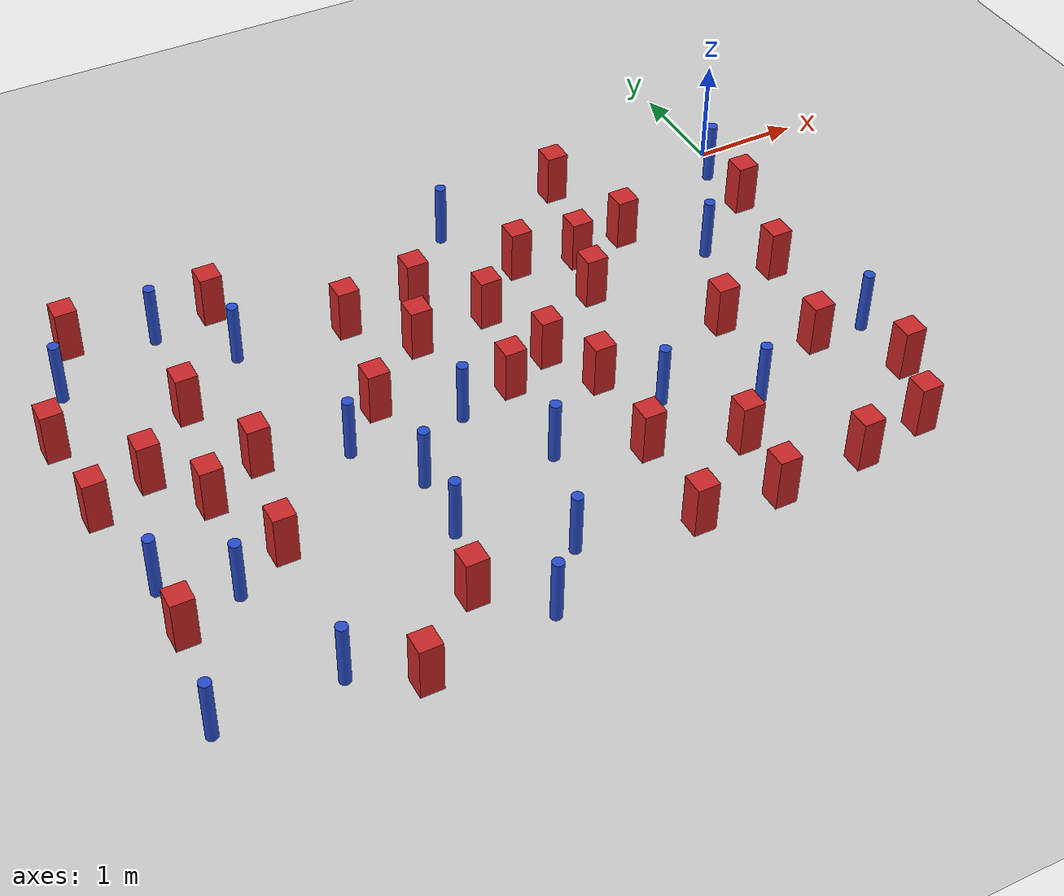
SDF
<sdf version="1.6">
 <world name="default">
  <model name="ground_plane">
   <static>1</static>
   <link name="link">
    <collision name="collision">
     <geometry><plane><normal>0 0 1</normal><size>100 100</size></plane></geometry>
     <surface><friction><ode><mu>100</mu><mu2>50</mu2></ode></friction></surface>
    </collision>
    <visual name="visual">
     <cast_shadows>0</cast_shadows>
     <geometry><plane><normal>0 0 1</normal><size>100 100</size></plane></geometry>
     <material>
      <ambient>1.0 1.0 1.0 1.0</ambient>
      <diffuse>0.8 0.8 0.8 1.0</diffuse>
      <specular>0.01 0.01 0.01 1.000000</specular>
     </material>
    </visual>
   </link>
  </model>
  <model name="pole_obstacle4">
   <static>true</static>
   <pose>-4.39595485227 -2.83956614343 2.88873142074e-08 -9.90536690245e-09 4.6021994898e-07 -1.20965994966e-07</pose>
   <link name="link">
    <pose>0 0 0.3 0 -0 0</pose>
    <inertial>
     <mass>1</mass>
     <inertia><ixx>0.145833</ixx><ixy>0</ixy><ixz>0</ixz><iyy>0.145833</iyy><iyz>0</iyz><izz>0.125</izz></inertia>
    </inertial>
    <collision name="collision">
     <geometry><cylinder><radius>0.05</radius><length>.6</length></cylinder></geometry>
    </collision>
    <visual name="visual">
     <geometry><cylinder><radius>0.05</radius><length>.6</length></cylinder></geometry>
     <material>
      <script><name>Gazebo/Blue</name><uri>file://media/materials/scripts/gazebo.material</uri></script>
     </material>
    </visual>
   </link>
  </model>
  <model name="square_post_obstacle6">
   <static>true</static>
   <pose>-3.73251036276 -1.32779266943 8.22691968438e-08 7.2212513382e-06 -7.54495500217e-07 2.29674213826e-05</pose>
   <link name="link">
    <pose>0 0 0.25 0 -0 0</pose>
    <inertial>
     <mass>100</mass>
     <inertia>
      <ixx>0.166667</ixx>
      <ixy>0</ixy>
      <ixz>0</ixz>
      <iyy>0.166667</iyy>
      <iyz>0</iyz>
      <izz>0.166667</izz>
     </inertia>
    </inertial>
    <collision name="collision"><geometry><box><size>.2 .2 .5</size></box></geometry></collision>
    <visual name="visual">
     <geometry><box><size>.2 .2 .5</size></box></geometry>
     <material>
      <script><name>Gazebo/Red</name><uri>file://media/materials/scripts/gazebo.material</uri></script>
     </material>
    </visual>
   </link>
  </model>
  <model name="pole_obstacle13">
   <static>true</static>
   <pose>-1.42932631599 -3.22152350444 2.88873142074e-08 -9.90536689791e-09 4.6021994899e-07 -1.20965994959e-07</pose>
   <link name="link">
    <pose>0 0 0.3 0 -0 0</pose>
    <inertial>
     <mass>1</mass>
     <inertia><ixx>0.145833</ixx><ixy>0</ixy><ixz>0</ixz><iyy>0.145833</iyy><iyz>0</iyz><izz>0.125</izz></inertia>
    </inertial>
    <collision name="collision">
     <geometry><cylinder><radius>0.05</radius><length>.6</length></cylinder></geometry>
    </collision>
    <visual name="visual">
     <geometry><cylinder><radius>0.05</radius><length>.6</length></cylinder></geometry>
     <material>
      <script><name>Gazebo/Blue</name><uri>file://media/materials/scripts/gazebo.material</uri></script>
     </material>
    </visual>
   </link>
  </model>
  <model name="square_post_obstacle12">
   <static>true</static>
   <pose>-1.90750702567 -0.886768801386 8.22691968438e-08 7.2212513382e-06 -7.54495500217e-07 2.29674213826e-05</pose>
   <link name="link">
    <pose>0 0 0.25 0 -0 0</pose>
    <inertial>
     <mass>100</mass>
     <inertia>
      <ixx>0.166667</ixx>
      <ixy>0</ixy>
      <ixz>0</ixz>
      <iyy>0.166667</iyy>
      <iyz>0</iyz>
      <izz>0.166667</izz>
     </inertia>
    </inertial>
    <collision name="collision"><geometry><box><size>.2 .2 .5</size></box></geometry></collision>
    <visual name="visual">
     <geometry><box><size>.2 .2 .5</size></box></geometry>
     <material>
      <script><name>Gazebo/Red</name><uri>file://media/materials/scripts/gazebo.material</uri></script>
     </material>
    </visual>
   </link>
  </model>
  <model name="square_post_obstacle24">
   <static>true</static>
   <pose>-1.93333260109 -4.26986810397 8.22691968438e-08 7.22125133819e-06 -7.54495500217e-07 2.29674213826e-05</pose>
   <link name="link">
    <pose>0 0 0.25 0 -0 0</pose>
    <inertial>
     <mass>100</mass>
     <inertia>
      <ixx>0.166667</ixx>
      <ixy>0</ixy>
      <ixz>0</ixz>
      <iyy>0.166667</iyy>
      <iyz>0</iyz>
      <izz>0.166667</izz>
     </inertia>
    </inertial>
    <collision name="collision"><geometry><box><size>.2 .2 .5</size></box></geometry></collision>
    <visual name="visual">
     <geometry><box><size>.2 .2 .5</size></box></geometry>
     <material>
      <script><name>Gazebo/Red</name><uri>file://media/materials/scripts/gazebo.material</uri></script>
     </material>
    </visual>
   </link>
  </model>
  <model name="pole_obstacle34">
   <static>true</static>
   <pose>-3.32096200655 -3.04326368019 2.88873142074e-08 -9.90536689597e-09 4.60219948995e-07 -1.20965994957e-07</pose>
   <link name="link">
    <pose>0 0 0.3 0 -0 0</pose>
    <inertial>
     <mass>1</mass>
     <inertia><ixx>0.145833</ixx><ixy>0</ixy><ixz>0</ixz><iyy>0.145833</iyy><iyz>0</iyz><izz>0.125</izz></inertia>
    </inertial>
    <collision name="collision">
     <geometry><cylinder><radius>0.05</radius><length>.6</length></cylinder></geometry>
    </collision>
    <visual name="visual">
     <geometry><cylinder><radius>0.05</radius><length>.6</length></cylinder></geometry>
     <material>
      <script><name>Gazebo/Blue</name><uri>file://media/materials/scripts/gazebo.material</uri></script>
     </material>
    </visual>
   </link>
  </model>
  <model name="pole_obstacle35">
   <static>true</static>
   <pose>-3.66695691176 -4.0226889884 2.88873142074e-08 -9.90536690007e-09 4.60219948985e-07 -1.20965994963e-07</pose>
   <link name="link">
    <pose>0 0 0.3 0 -0 0</pose>
    <inertial>
     <mass>1</mass>
     <inertia><ixx>0.145833</ixx><ixy>0</ixy><ixz>0</ixz><iyy>0.145833</iyy><iyz>0</iyz><izz>0.125</izz></inertia>
    </inertial>
    <collision name="collision">
     <geometry><cylinder><radius>0.05</radius><length>.6</length></cylinder></geometry>
    </collision>
    <visual name="visual">
     <geometry><cylinder><radius>0.05</radius><length>.6</length></cylinder></geometry>
     <material>
      <script><name>Gazebo/Blue</name><uri>file://media/materials/scripts/gazebo.material</uri></script>
     </material>
    </visual>
   </link>
  </model>
  <model name="pole_obstacle39">
   <static>true</static>
   <pose>-4.78832714391 -2.25343991581 2.88873142074e-08 -9.90536690245e-09 4.6021994898e-07 -1.20965994966e-07</pose>
   <link name="link">
    <pose>0 0 0.3 0 -0 0</pose>
    <inertial>
     <mass>1</mass>
     <inertia><ixx>0.145833</ixx><ixy>0</ixy><ixz>0</ixz><iyy>0.145833</iyy><iyz>0</iyz><izz>0.125</izz></inertia>
    </inertial>
    <collision name="collision">
     <geometry><cylinder><radius>0.05</radius><length>.6</length></cylinder></geometry>
    </collision>
    <visual name="visual">
     <geometry><cylinder><radius>0.05</radius><length>.6</length></cylinder></geometry>
     <material>
      <script><name>Gazebo/Blue</name><uri>file://media/materials/scripts/gazebo.material</uri></script>
     </material>
    </visual>
   </link>
  </model>
  <model name="pole_obstacle41">
   <static>true</static>
   <pose>-5.72235798381 -0.187766226478 2.88873142074e-08 -9.90536689378e-09 4.60219949e-07 -1.20965994955e-07</pose>
   <link name="link">
    <pose>0 0 0.3 0 -0 0</pose>
    <inertial>
     <mass>1</mass>
     <inertia><ixx>0.145833</ixx><ixy>0</ixy><ixz>0</ixz><iyy>0.145833</iyy><iyz>0</iyz><izz>0.125</izz></inertia>
    </inertial>
    <collision name="collision">
     <geometry><cylinder><radius>0.05</radius><length>.6</length></cylinder></geometry>
    </collision>
    <visual name="visual">
     <geometry><cylinder><radius>0.05</radius><length>.6</length></cylinder></geometry>
     <material>
      <script><name>Gazebo/Blue</name><uri>file://media/materials/scripts/gazebo.material</uri></script>
     </material>
    </visual>
   </link>
  </model>
  <model name="pole_obstacle52">
   <static>true</static>
   <pose>-2.19203236939 -2.86878616461 2.88873142074e-08 -9.90536690232e-09 4.6021994898e-07 -1.20965994968e-07</pose>
   <link name="link">
    <pose>0 0 0.3 0 -0 0</pose>
    <inertial>
     <mass>1</mass>
     <inertia><ixx>0.145833</ixx><ixy>0</ixy><ixz>0</ixz><iyy>0.145833</iyy><iyz>0</iyz><izz>0.125</izz></inertia>
    </inertial>
    <collision name="collision">
     <geometry><cylinder><radius>0.05</radius><length>.6</length></cylinder></geometry>
    </collision>
    <visual name="visual">
     <geometry><cylinder><radius>0.05</radius><length>.6</length></cylinder></geometry>
     <material>
      <script><name>Gazebo/Blue</name><uri>file://media/materials/scripts/gazebo.material</uri></script>
     </material>
    </visual>
   </link>
  </model>
  <model name="square_post_obstacle43">
   <static>true</static>
   <pose>-0.394479689452 -1.82041644097 8.22691968438e-08 7.2212513382e-06 -7.54495500217e-07 2.29674213826e-05</pose>
   <link name="link">
    <pose>0 0 0.25 0 -0 0</pose>
    <inertial>
     <mass>100</mass>
     <inertia>
      <ixx>0.166667</ixx>
      <ixy>0</ixy>
      <ixz>0</ixz>
      <iyy>0.166667</iyy>
      <iyz>0</iyz>
      <izz>0.166667</izz>
     </inertia>
    </inertial>
    <collision name="collision"><geometry><box><size>.2 .2 .5</size></box></geometry></collision>
    <visual name="visual">
     <geometry><box><size>.2 .2 .5</size></box></geometry>
     <material>
      <script><name>Gazebo/Red</name><uri>file://media/materials/scripts/gazebo.material</uri></script>
     </material>
    </visual>
   </link>
  </model>
  <model name="square_post_obstacle45">
   <static>true</static>
   <pose>-6.43561946679 0.0325655676555 8.22691968438e-08 7.22125133819e-06 -7.54495500217e-07 2.29674213826e-05</pose>
   <link name="link">
    <pose>0 0 0.25 0 -0 0</pose>
    <inertial>
     <mass>100</mass>
     <inertia>
      <ixx>0.166667</ixx>
      <ixy>0</ixy>
      <ixz>0</ixz>
      <iyy>0.166667</iyy>
      <iyz>0</iyz>
      <izz>0.166667</izz>
     </inertia>
    </inertial>
    <collision name="collision"><geometry><box><size>.2 .2 .5</size></box></geometry></collision>
    <visual name="visual">
     <geometry><box><size>.2 .2 .5</size></box></geometry>
     <material>
      <script><name>Gazebo/Red</name><uri>file://media/materials/scripts/gazebo.material</uri></script>
     </material>
    </visual>
   </link>
  </model>
  <model name="square_post_obstacle53">
   <static>true</static>
   <pose>-4.39028294459 -1.89008673459 8.22691968438e-08 7.2212513382e-06 -7.54495500217e-07 2.29674213826e-05</pose>
   <link name="link">
    <pose>0 0 0.25 0 -0 0</pose>
    <inertial>
     <mass>100</mass>
     <inertia>
      <ixx>0.166667</ixx>
      <ixy>0</ixy>
      <ixz>0</ixz>
      <iyy>0.166667</iyy>
      <iyz>0</iyz>
      <izz>0.166667</izz>
     </inertia>
    </inertial>
    <collision name="collision"><geometry><box><size>.2 .2 .5</size></box></geometry></collision>
    <visual name="visual">
     <geometry><box><size>.2 .2 .5</size></box></geometry>
     <material>
      <script><name>Gazebo/Red</name><uri>file://media/materials/scripts/gazebo.material</uri></script>
     </material>
    </visual>
   </link>
  </model>
  <model name="square_post_obstacle54">
   <static>true</static>
   <pose>-0.438059465877 -4.09537539827 8.22691968438e-08 7.2212513382e-06 -7.54495500217e-07 2.29674213826e-05</pose>
   <link name="link">
    <pose>0 0 0.25 0 -0 0</pose>
    <inertial>
     <mass>100</mass>
     <inertia>
      <ixx>0.166667</ixx>
      <ixy>0</ixy>
      <ixz>0</ixz>
      <iyy>0.166667</iyy>
      <iyz>0</iyz>
      <izz>0.166667</izz>
     </inertia>
    </inertial>
    <collision name="collision"><geometry><box><size>.2 .2 .5</size></box></geometry></collision>
    <visual name="visual">
     <geometry><box><size>.2 .2 .5</size></box></geometry>
     <material>
      <script><name>Gazebo/Red</name><uri>file://media/materials/scripts/gazebo.material</uri></script>
     </material>
    </visual>
   </link>
  </model>
  <model name="square_post_obstacle58">
   <static>true</static>
   <pose>-6.02430051502 -2.31082834648 8.22691968438e-08 7.2212513382e-06 -7.54495500217e-07 2.29674213826e-05</pose>
   <link name="link">
    <pose>0 0 0.25 0 -0 0</pose>
    <inertial>
     <mass>100</mass>
     <inertia>
      <ixx>0.166667</ixx>
      <ixy>0</ixy>
      <ixz>0</ixz>
      <iyy>0.166667</iyy>
      <iyz>0</iyz>
      <izz>0.166667</izz>
     </inertia>
    </inertial>
    <collision name="collision"><geometry><box><size>.2 .2 .5</size></box></geometry></collision>
    <visual name="visual">
     <geometry><box><size>.2 .2 .5</size></box></geometry>
     <material>
      <script><name>Gazebo/Red</name><uri>file://media/materials/scripts/gazebo.material</uri></script>
     </material>
    </visual>
   </link>
  </model>
  <model name="pole_obstacle69">
   <static>true</static>
   <pose>-5.7930384761 -4.38501093133 2.88873142074e-08 -9.90536690842e-09 4.60219948965e-07 -1.20965994976e-07</pose>
   <link name="link">
    <pose>0 0 0.3 0 -0 0</pose>
    <inertial>
     <mass>1</mass>
     <inertia><ixx>0.145833</ixx><ixy>0</ixy><ixz>0</ixz><iyy>0.145833</iyy><iyz>0</iyz><izz>0.125</izz></inertia>
    </inertial>
    <collision name="collision">
     <geometry><cylinder><radius>0.05</radius><length>.6</length></cylinder></geometry>
    </collision>
    <visual name="visual">
     <geometry><cylinder><radius>0.05</radius><length>.6</length></cylinder></geometry>
     <material>
      <script><name>Gazebo/Blue</name><uri>file://media/materials/scripts/gazebo.material</uri></script>
     </material>
    </visual>
   </link>
  </model>
  <model name="square_post_obstacle61">
   <static>true</static>
   <pose>-2.80187065929 -1.94971970988 8.22691968438e-08 7.22125133819e-06 -7.54495500217e-07 2.29674213826e-05</pose>
   <link name="link">
    <pose>0 0 0.25 0 -0 0</pose>
    <inertial>
     <mass>100</mass>
     <inertia>
      <ixx>0.166667</ixx>
      <ixy>0</ixy>
      <ixz>0</ixz>
      <iyy>0.166667</iyy>
      <iyz>0</iyz>
      <izz>0.166667</izz>
     </inertia>
    </inertial>
    <collision name="collision"><geometry><box><size>.2 .2 .5</size></box></geometry></collision>
    <visual name="visual">
     <geometry><box><size>.2 .2 .5</size></box></geometry>
     <material>
      <script><name>Gazebo/Red</name><uri>file://media/materials/scripts/gazebo.material</uri></script>
     </material>
    </visual>
   </link>
  </model>
  <model name="square_post_obstacle63">
   <static>true</static>
   <pose>-2.46739505392 -0.766077989339 8.22691968438e-08 7.2212513382e-06 -7.54495500217e-07 2.29674213826e-05</pose>
   <link name="link">
    <pose>0 0 0.25 0 -0 0</pose>
    <inertial>
     <mass>100</mass>
     <inertia>
      <ixx>0.166667</ixx>
      <ixy>0</ixy>
      <ixz>0</ixz>
      <iyy>0.166667</iyy>
      <iyz>0</iyz>
      <izz>0.166667</izz>
     </inertia>
    </inertial>
    <collision name="collision"><geometry><box><size>.2 .2 .5</size></box></geometry></collision>
    <visual name="visual">
     <geometry><box><size>.2 .2 .5</size></box></geometry>
     <material>
      <script><name>Gazebo/Red</name><uri>file://media/materials/scripts/gazebo.material</uri></script>
     </material>
    </visual>
   </link>
  </model>
  <model name="pole_obstacle76">
   <static>true</static>
   <pose>-6.17054257128 -3.28636392188 2.88873142074e-08 -9.90536690245e-09 4.6021994898e-07 -1.20965994966e-07</pose>
   <link name="link">
    <pose>0 0 0.3 0 -0 0</pose>
    <inertial>
     <mass>1</mass>
     <inertia><ixx>0.145833</ixx><ixy>0</ixy><ixz>0</ixz><iyy>0.145833</iyy><iyz>0</iyz><izz>0.125</izz></inertia>
    </inertial>
    <collision name="collision">
     <geometry><cylinder><radius>0.05</radius><length>.6</length></cylinder></geometry>
    </collision>
    <visual name="visual">
     <geometry><cylinder><radius>0.05</radius><length>.6</length></cylinder></geometry>
     <material>
      <script><name>Gazebo/Blue</name><uri>file://media/materials/scripts/gazebo.material</uri></script>
     </material>
    </visual>
   </link>
  </model>
  <model name="square_post_obstacle81">
   <static>true</static>
   <pose>-3.01784688482 -1.24059300447 8.22691968438e-08 7.2212513382e-06 -7.54495500217e-07 2.29674213826e-05</pose>
   <link name="link">
    <pose>0 0 0.25 0 -0 0</pose>
    <inertial>
     <mass>100</mass>
     <inertia>
      <ixx>0.166667</ixx>
      <ixy>0</ixy>
      <ixz>0</ixz>
      <iyy>0.166667</iyy>
      <iyz>0</iyz>
      <izz>0.166667</izz>
     </inertia>
    </inertial>
    <collision name="collision"><geometry><box><size>.2 .2 .5</size></box></geometry></collision>
    <visual name="visual">
     <geometry><box><size>.2 .2 .5</size></box></geometry>
     <material>
      <script><name>Gazebo/Red</name><uri>file://media/materials/scripts/gazebo.material</uri></script>
     </material>
    </visual>
   </link>
  </model>
  <model name="square_post_obstacle83">
   <static>true</static>
   <pose>-5.81352952129 -1.2148683282 8.22691968438e-08 7.2212513382e-06 -7.54495500217e-07 2.29674213826e-05</pose>
   <link name="link">
    <pose>0 0 0.25 0 -0 0</pose>
    <inertial>
     <mass>100</mass>
     <inertia>
      <ixx>0.166667</ixx>
      <ixy>0</ixy>
      <ixz>0</ixz>
      <iyy>0.166667</iyy>
      <iyz>0</iyz>
      <izz>0.166667</izz>
     </inertia>
    </inertial>
    <collision name="collision"><geometry><box><size>.2 .2 .5</size></box></geometry></collision>
    <visual name="visual">
     <geometry><box><size>.2 .2 .5</size></box></geometry>
     <material>
      <script><name>Gazebo/Red</name><uri>file://media/materials/scripts/gazebo.material</uri></script>
     </material>
    </visual>
   </link>
  </model>
  <model name="pole_obstacle97">
   <static>true</static>
   <pose>-6.67822165512 -0.532237628005 2.88873142074e-08 -9.90536689968e-09 4.60219948986e-07 -1.20965994963e-07</pose>
   <link name="link">
    <pose>0 0 0.3 0 -0 0</pose>
    <inertial>
     <mass>1</mass>
     <inertia><ixx>0.145833</ixx><ixy>0</ixy><ixz>0</ixz><iyy>0.145833</iyy><iyz>0</iyz><izz>0.125</izz></inertia>
    </inertial>
    <collision name="collision">
     <geometry><cylinder><radius>0.05</radius><length>.6</length></cylinder></geometry>
    </collision>
    <visual name="visual">
     <geometry><cylinder><radius>0.05</radius><length>.6</length></cylinder></geometry>
     <material>
      <script><name>Gazebo/Blue</name><uri>file://media/materials/scripts/gazebo.material</uri></script>
     </material>
    </visual>
   </link>
  </model>
  <model name="square_post_obstacle92">
   <static>true</static>
   <pose>-0.137102365583 -3.46170573224 8.22691968438e-08 7.2212513382e-06 -7.54495500217e-07 2.29674213826e-05</pose>
   <link name="link">
    <pose>0 0 0.25 0 -0 0</pose>
    <inertial>
     <mass>100</mass>
     <inertia>
      <ixx>0.166667</ixx>
      <ixy>0</ixy>
      <ixz>0</ixz>
      <iyy>0.166667</iyy>
      <iyz>0</iyz>
      <izz>0.166667</izz>
     </inertia>
    </inertial>
    <collision name="collision"><geometry><box><size>.2 .2 .5</size></box></geometry></collision>
    <visual name="visual">
     <geometry><box><size>.2 .2 .5</size></box></geometry>
     <material>
      <script><name>Gazebo/Red</name><uri>file://media/materials/scripts/gazebo.material</uri></script>
     </material>
    </visual>
   </link>
  </model>
  <model name="pole_obstacle102">
   <static>true</static>
   <pose>-0.148538504717 -0.33504437211 2.88873142074e-08 -9.90536690108e-09 4.60219948983e-07 -1.20965994963e-07</pose>
   <link name="link">
    <pose>0 0 0.3 0 -0 0</pose>
    <inertial>
     <mass>1</mass>
     <inertia><ixx>0.145833</ixx><ixy>0</ixy><ixz>0</ixz><iyy>0.145833</iyy><iyz>0</iyz><izz>0.125</izz></inertia>
    </inertial>
    <collision name="collision">
     <geometry><cylinder><radius>0.05</radius><length>.6</length></cylinder></geometry>
    </collision>
    <visual name="visual">
     <geometry><cylinder><radius>0.05</radius><length>.6</length></cylinder></geometry>
     <material>
      <script><name>Gazebo/Blue</name><uri>file://media/materials/scripts/gazebo.material</uri></script>
     </material>
    </visual>
   </link>
  </model>
  <model name="pole_obstacle103">
   <static>true</static>
   <pose>-0.802383869071 -1.33732478238 2.88873142074e-08 -9.90536689855e-09 4.60219948989e-07 -1.20965994962e-07</pose>
   <link name="link">
    <pose>0 0 0.3 0 -0 0</pose>
    <inertial>
     <mass>1</mass>
     <inertia><ixx>0.145833</ixx><ixy>0</ixy><ixz>0</ixz><iyy>0.145833</iyy><iyz>0</iyz><izz>0.125</izz></inertia>
    </inertial>
    <collision name="collision">
     <geometry><cylinder><radius>0.05</radius><length>.6</length></cylinder></geometry>
    </collision>
    <visual name="visual">
     <geometry><cylinder><radius>0.05</radius><length>.6</length></cylinder></geometry>
     <material>
      <script><name>Gazebo/Blue</name><uri>file://media/materials/scripts/gazebo.material</uri></script>
     </material>
    </visual>
   </link>
  </model>
  <model name="square_post_obstacle101">
   <static>true</static>
   <pose>-3.48395962732 -0.73702462658 8.22691968438e-08 7.2212513382e-06 -7.54495500217e-07 2.29674213826e-05</pose>
   <link name="link">
    <pose>0 0 0.25 0 -0 0</pose>
    <inertial>
     <mass>100</mass>
     <inertia>
      <ixx>0.166667</ixx>
      <ixy>0</ixy>
      <ixz>0</ixz>
      <iyy>0.166667</iyy>
      <iyz>0</iyz>
      <izz>0.166667</izz>
     </inertia>
    </inertial>
    <collision name="collision"><geometry><box><size>.2 .2 .5</size></box></geometry></collision>
    <visual name="visual">
     <geometry><box><size>.2 .2 .5</size></box></geometry>
     <material>
      <script><name>Gazebo/Red</name><uri>file://media/materials/scripts/gazebo.material</uri></script>
     </material>
    </visual>
   </link>
  </model>
  <model name="square_post_obstacle102">
   <static>true</static>
   <pose>-1.09774832891 -4.21380237382 8.22691968438e-08 7.2212513382e-06 -7.54495500217e-07 2.29674213826e-05</pose>
   <link name="link">
    <pose>0 0 0.25 0 -0 0</pose>
    <inertial>
     <mass>100</mass>
     <inertia>
      <ixx>0.166667</ixx>
      <ixy>0</ixy>
      <ixz>0</ixz>
      <iyy>0.166667</iyy>
      <iyz>0</iyz>
      <izz>0.166667</izz>
     </inertia>
    </inertial>
    <collision name="collision"><geometry><box><size>.2 .2 .5</size></box></geometry></collision>
    <visual name="visual">
     <geometry><box><size>.2 .2 .5</size></box></geometry>
     <material>
      <script><name>Gazebo/Red</name><uri>file://media/materials/scripts/gazebo.material</uri></script>
     </material>
    </visual>
   </link>
  </model>
  <model name="square_post_obstacle110">
   <static>true</static>
   <pose>-5.27845526826 -4.68974292624 8.22691968438e-08 7.22125133819e-06 -7.54495500217e-07 2.29674213826e-05</pose>
   <link name="link">
    <pose>0 0 0.25 0 -0 0</pose>
    <inertial>
     <mass>100</mass>
     <inertia>
      <ixx>0.166667</ixx>
      <ixy>0</ixy>
      <ixz>0</ixz>
      <iyy>0.166667</iyy>
      <iyz>0</iyz>
      <izz>0.166667</izz>
     </inertia>
    </inertial>
    <collision name="collision"><geometry><box><size>.2 .2 .5</size></box></geometry></collision>
    <visual name="visual">
     <geometry><box><size>.2 .2 .5</size></box></geometry>
     <material>
      <script><name>Gazebo/Red</name><uri>file://media/materials/scripts/gazebo.material</uri></script>
     </material>
    </visual>
   </link>
  </model>
  <model name="square_post_obstacle111">
   <static>true</static>
   <pose>-4.17896338685 -0.813178407386 8.22691968438e-08 7.2212513382e-06 -7.54495500217e-07 2.29674213826e-05</pose>
   <link name="link">
    <pose>0 0 0.25 0 -0 0</pose>
    <inertial>
     <mass>100</mass>
     <inertia>
      <ixx>0.166667</ixx>
      <ixy>0</ixy>
      <ixz>0</ixz>
      <iyy>0.166667</iyy>
      <iyz>0</iyz>
      <izz>0.166667</izz>
     </inertia>
    </inertial>
    <collision name="collision"><geometry><box><size>.2 .2 .5</size></box></geometry></collision>
    <visual name="visual">
     <geometry><box><size>.2 .2 .5</size></box></geometry>
     <material>
      <script><name>Gazebo/Red</name><uri>file://media/materials/scripts/gazebo.material</uri></script>
     </material>
    </visual>
   </link>
  </model>
  <model name="square_post_obstacle114">
   <static>true</static>
   <pose>-4.60981411799 -4.10684675861 8.22691968438e-08 7.22125133819e-06 -7.54495500217e-07 2.29674213826e-05</pose>
   <link name="link">
    <pose>0 0 0.25 0 -0 0</pose>
    <inertial>
     <mass>100</mass>
     <inertia>
      <ixx>0.166667</ixx>
      <ixy>0</ixy>
      <ixz>0</ixz>
      <iyy>0.166667</iyy>
      <iyz>0</iyz>
      <izz>0.166667</izz>
     </inertia>
    </inertial>
    <collision name="collision"><geometry><box><size>.2 .2 .5</size></box></geometry></collision>
    <visual name="visual">
     <geometry><box><size>.2 .2 .5</size></box></geometry>
     <material>
      <script><name>Gazebo/Red</name><uri>file://media/materials/scripts/gazebo.material</uri></script>
     </material>
    </visual>
   </link>
  </model>
  <model name="pole_obstacle129">
   <static>true</static>
   <pose>-4.12384519465 -4.54867424451 2.88873142074e-08 -9.90536690842e-09 4.60219948965e-07 -1.20965994976e-07</pose>
   <link name="link">
    <pose>0 0 0.3 0 -0 0</pose>
    <inertial>
     <mass>1</mass>
     <inertia><ixx>0.145833</ixx><ixy>0</ixy><ixz>0</ixz><iyy>0.145833</iyy><iyz>0</iyz><izz>0.125</izz></inertia>
    </inertial>
    <collision name="collision">
     <geometry><cylinder><radius>0.05</radius><length>.6</length></cylinder></geometry>
    </collision>
    <visual name="visual">
     <geometry><cylinder><radius>0.05</radius><length>.6</length></cylinder></geometry>
     <material>
      <script><name>Gazebo/Blue</name><uri>file://media/materials/scripts/gazebo.material</uri></script>
     </material>
    </visual>
   </link>
  </model>
  <model name="pole_obstacle139">
   <static>true</static>
   <pose>-6.72519555158 -2.94824844144 2.88873142074e-08 -9.90536690245e-09 4.6021994898e-07 -1.20965994966e-07</pose>
   <link name="link">
    <pose>0 0 0.3 0 -0 0</pose>
    <inertial>
     <mass>1</mass>
     <inertia><ixx>0.145833</ixx><ixy>0</ixy><ixz>0</ixz><iyy>0.145833</iyy><iyz>0</iyz><izz>0.125</izz></inertia>
    </inertial>
    <collision name="collision">
     <geometry><cylinder><radius>0.05</radius><length>.6</length></cylinder></geometry>
    </collision>
    <visual name="visual">
     <geometry><cylinder><radius>0.05</radius><length>.6</length></cylinder></geometry>
     <material>
      <script><name>Gazebo/Blue</name><uri>file://media/materials/scripts/gazebo.material</uri></script>
     </material>
    </visual>
   </link>
  </model>
  <model name="square_post_obstacle136">
   <static>true</static>
   <pose>-0.638340703803 -2.84329780334 8.22691968438e-08 7.2212513382e-06 -7.54495500217e-07 2.29674213826e-05</pose>
   <link name="link">
    <pose>0 0 0.25 0 -0 0</pose>
    <inertial>
     <mass>100</mass>
     <inertia>
      <ixx>0.166667</ixx>
      <ixy>0</ixy>
      <ixz>0</ixz>
      <iyy>0.166667</iyy>
      <iyz>0</iyz>
      <izz>0.166667</izz>
     </inertia>
    </inertial>
    <collision name="collision"><geometry><box><size>.2 .2 .5</size></box></geometry></collision>
    <visual name="visual">
     <geometry><box><size>.2 .2 .5</size></box></geometry>
     <material>
      <script><name>Gazebo/Red</name><uri>file://media/materials/scripts/gazebo.material</uri></script>
     </material>
    </visual>
   </link>
  </model>
  <model name="square_post_obstacle138">
   <static>true</static>
   <pose>-2.04816196363 -1.40176881231 8.22691968438e-08 7.2212513382e-06 -7.54495500217e-07 2.29674213826e-05</pose>
   <link name="link">
    <pose>0 0 0.25 0 -0 0</pose>
    <inertial>
     <mass>100</mass>
     <inertia>
      <ixx>0.166667</ixx>
      <ixy>0</ixy>
      <ixz>0</ixz>
      <iyy>0.166667</iyy>
      <iyz>0</iyz>
      <izz>0.166667</izz>
     </inertia>
    </inertial>
    <collision name="collision"><geometry><box><size>.2 .2 .5</size></box></geometry></collision>
    <visual name="visual">
     <geometry><box><size>.2 .2 .5</size></box></geometry>
     <material>
      <script><name>Gazebo/Red</name><uri>file://media/materials/scripts/gazebo.material</uri></script>
     </material>
    </visual>
   </link>
  </model>
  <model name="square_post_obstacle140">
   <static>true</static>
   <pose>-1.37883983089 -0.789453510589 8.22691968438e-08 7.2212513382e-06 -7.54495500217e-07 2.29674213826e-05</pose>
   <link name="link">
    <pose>0 0 0.25 0 -0 0</pose>
    <inertial>
     <mass>100</mass>
     <inertia>
      <ixx>0.166667</ixx>
      <ixy>0</ixy>
      <ixz>0</ixz>
      <iyy>0.166667</iyy>
      <iyz>0</iyz>
      <izz>0.166667</izz>
     </inertia>
    </inertial>
    <collision name="collision"><geometry><box><size>.2 .2 .5</size></box></geometry></collision>
    <visual name="visual">
     <geometry><box><size>.2 .2 .5</size></box></geometry>
     <material>
      <script><name>Gazebo/Red</name><uri>file://media/materials/scripts/gazebo.material</uri></script>
     </material>
    </visual>
   </link>
  </model>
  <model name="square_post_obstacle141">
   <static>true</static>
   <pose>-2.56363399266 -2.44575834882 8.22691968438e-08 7.2212513382e-06 -7.54495500217e-07 2.29674213826e-05</pose>
   <link name="link">
    <pose>0 0 0.25 0 -0 0</pose>
    <inertial>
     <mass>100</mass>
     <inertia>
      <ixx>0.166667</ixx>
      <ixy>0</ixy>
      <ixz>0</ixz>
      <iyy>0.166667</iyy>
      <iyz>0</iyz>
      <izz>0.166667</izz>
     </inertia>
    </inertial>
    <collision name="collision"><geometry><box><size>.2 .2 .5</size></box></geometry></collision>
    <visual name="visual">
     <geometry><box><size>.2 .2 .5</size></box></geometry>
     <material>
      <script><name>Gazebo/Red</name><uri>file://media/materials/scripts/gazebo.material</uri></script>
     </material>
    </visual>
   </link>
  </model>
  <model name="pole_obstacle162">
   <static>true</static>
   <pose>-3.77690063974 -2.28986151032 2.88873142074e-08 -9.90536689597e-09 4.60219948995e-07 -1.20965994957e-07</pose>
   <link name="link">
    <pose>0 0 0.3 0 -0 0</pose>
    <inertial>
     <mass>1</mass>
     <inertia><ixx>0.145833</ixx><ixy>0</ixy><ixz>0</ixz><iyy>0.145833</iyy><iyz>0</iyz><izz>0.125</izz></inertia>
    </inertial>
    <collision name="collision">
     <geometry><cylinder><radius>0.05</radius><length>.6</length></cylinder></geometry>
    </collision>
    <visual name="visual">
     <geometry><cylinder><radius>0.05</radius><length>.6</length></cylinder></geometry>
     <material>
      <script><name>Gazebo/Blue</name><uri>file://media/materials/scripts/gazebo.material</uri></script>
     </material>
    </visual>
   </link>
  </model>
  <model name="square_post_obstacle154">
   <static>true</static>
   <pose>-6.88170344246 -2.02462474669 8.22691968438e-08 7.22125133819e-06 -7.54495500217e-07 2.29674213826e-05</pose>
   <link name="link">
    <pose>0 0 0.25 0 -0 0</pose>
    <inertial>
     <mass>100</mass>
     <inertia>
      <ixx>0.166667</ixx>
      <ixy>0</ixy>
      <ixz>0</ixz>
      <iyy>0.166667</iyy>
      <iyz>0</iyz>
      <izz>0.166667</izz>
     </inertia>
    </inertial>
    <collision name="collision"><geometry><box><size>.2 .2 .5</size></box></geometry></collision>
    <visual name="visual">
     <geometry><box><size>.2 .2 .5</size></box></geometry>
     <material>
      <script><name>Gazebo/Red</name><uri>file://media/materials/scripts/gazebo.material</uri></script>
     </material>
    </visual>
   </link>
  </model>
  <model name="square_post_obstacle162">
   <static>true</static>
   <pose>-5.51990380331 -2.04430539449 8.22691968438e-08 7.22125133819e-06 -7.54495500217e-07 2.29674213826e-05</pose>
   <link name="link">
    <pose>0 0 0.25 0 -0 0</pose>
    <inertial>
     <mass>100</mass>
     <inertia>
      <ixx>0.166667</ixx>
      <ixy>0</ixy>
      <ixz>0</ixz>
      <iyy>0.166667</iyy>
      <iyz>0</iyz>
      <izz>0.166667</izz>
     </inertia>
    </inertial>
    <collision name="collision"><geometry><box><size>.2 .2 .5</size></box></geometry></collision>
    <visual name="visual">
     <geometry><box><size>.2 .2 .5</size></box></geometry>
     <material>
      <script><name>Gazebo/Red</name><uri>file://media/materials/scripts/gazebo.material</uri></script>
     </material>
    </visual>
   </link>
  </model>
  <model name="pole_obstacle169">
   <static>true</static>
   <pose>-0.127298465099 -2.84094719563 2.88873142074e-08 -9.9053669244e-09 4.60219948928e-07 -1.20965994988e-07</pose>
   <link name="link">
    <pose>0 0 0.3 0 -0 0</pose>
    <inertial>
     <mass>1</mass>
     <inertia><ixx>0.145833</ixx><ixy>0</ixy><ixz>0</ixz><iyy>0.145833</iyy><iyz>0</iyz><izz>0.125</izz></inertia>
    </inertial>
    <collision name="collision">
     <geometry><cylinder><radius>0.05</radius><length>.6</length></cylinder></geometry>
    </collision>
    <visual name="visual">
     <geometry><cylinder><radius>0.05</radius><length>.6</length></cylinder></geometry>
     <material>
      <script><name>Gazebo/Blue</name><uri>file://media/materials/scripts/gazebo.material</uri></script>
     </material>
    </visual>
   </link>
  </model>
  <model name="square_post_obstacle170">
   <static>true</static>
   <pose>-6.36920255345 -1.82604761441 8.22691968438e-08 7.2212513382e-06 -7.54495500217e-07 2.29674213826e-05</pose>
   <link name="link">
    <pose>0 0 0.25 0 -0 0</pose>
    <inertial>
     <mass>100</mass>
     <inertia>
      <ixx>0.166667</ixx>
      <ixy>0</ixy>
      <ixz>0</ixz>
      <iyy>0.166667</iyy>
      <iyz>0</iyz>
      <izz>0.166667</izz>
     </inertia>
    </inertial>
    <collision name="collision"><geometry><box><size>.2 .2 .5</size></box></geometry></collision>
    <visual name="visual">
     <geometry><box><size>.2 .2 .5</size></box></geometry>
     <material>
      <script><name>Gazebo/Red</name><uri>file://media/materials/scripts/gazebo.material</uri></script>
     </material>
    </visual>
   </link>
  </model>
  <model name="square_post_obstacle171">
   <static>true</static>
   <pose>-1.62328031489 0.103704976673 8.22691968438e-08 7.2212513382e-06 -7.54495500217e-07 2.29674213826e-05</pose>
   <link name="link">
    <pose>0 0 0.25 0 -0 0</pose>
    <inertial>
     <mass>100</mass>
     <inertia>
      <ixx>0.166667</ixx>
      <ixy>0</ixy>
      <ixz>0</ixz>
      <iyy>0.166667</iyy>
      <iyz>0</iyz>
      <izz>0.166667</izz>
     </inertia>
    </inertial>
    <collision name="collision"><geometry><box><size>.2 .2 .5</size></box></geometry></collision>
    <visual name="visual">
     <geometry><box><size>.2 .2 .5</size></box></geometry>
     <material>
      <script><name>Gazebo/Red</name><uri>file://media/materials/scripts/gazebo.material</uri></script>
     </material>
    </visual>
   </link>
  </model>
  <model name="pole_obstacle172">
   <static>true</static>
   <pose>-2.86963590346 -0.0380679831493 2.88873142074e-08 -9.90536689199e-09 4.60219949004e-07 -1.20965994952e-07</pose>
   <link name="link">
    <pose>0 0 0.3 0 -0 0</pose>
    <inertial>
     <mass>1</mass>
     <inertia><ixx>0.145833</ixx><ixy>0</ixy><ixz>0</ixz><iyy>0.145833</iyy><iyz>0</iyz><izz>0.125</izz></inertia>
    </inertial>
    <collision name="collision">
     <geometry><cylinder><radius>0.05</radius><length>.6</length></cylinder></geometry>
    </collision>
    <visual name="visual">
     <geometry><cylinder><radius>0.05</radius><length>.6</length></cylinder></geometry>
     <material>
      <script><name>Gazebo/Blue</name><uri>file://media/materials/scripts/gazebo.material</uri></script>
     </material>
    </visual>
   </link>
  </model>
  <model name="pole_obstacle176">
   <static>true</static>
   <pose>-6.84382585162 -4.41519551879 2.88873142074e-08 -9.90536690842e-09 4.60219948965e-07 -1.20965994976e-07</pose>
   <link name="link">
    <pose>0 0 0.3 0 -0 0</pose>
    <inertial>
     <mass>1</mass>
     <inertia><ixx>0.145833</ixx><ixy>0</ixy><ixz>0</ixz><iyy>0.145833</iyy><iyz>0</iyz><izz>0.125</izz></inertia>
    </inertial>
    <collision name="collision">
     <geometry><cylinder><radius>0.05</radius><length>.6</length></cylinder></geometry>
    </collision>
    <visual name="visual">
     <geometry><cylinder><radius>0.05</radius><length>.6</length></cylinder></geometry>
     <material>
      <script><name>Gazebo/Blue</name><uri>file://media/materials/scripts/gazebo.material</uri></script>
     </material>
    </visual>
   </link>
  </model>
  <model name="square_post_obstacle176">
   <static>true</static>
   <pose>-2.61120658754 -3.33614027246 8.22691968438e-08 7.2212513382e-06 -7.54495500217e-07 2.29674213826e-05</pose>
   <link name="link">
    <pose>0 0 0.25 0 -0 0</pose>
    <inertial>
     <mass>100</mass>
     <inertia>
      <ixx>0.166667</ixx>
      <ixy>0</ixy>
      <ixz>0</ixz>
      <iyy>0.166667</iyy>
      <iyz>0</iyz>
      <izz>0.166667</izz>
     </inertia>
    </inertial>
    <collision name="collision"><geometry><box><size>.2 .2 .5</size></box></geometry></collision>
    <visual name="visual">
     <geometry><box><size>.2 .2 .5</size></box></geometry>
     <material>
      <script><name>Gazebo/Red</name><uri>file://media/materials/scripts/gazebo.material</uri></script>
     </material>
    </visual>
   </link>
  </model>
  <model name="square_post_obstacle178">
   <static>true</static>
   <pose>-6.93591866644 -1.13380403513 8.22691968438e-08 7.2212513382e-06 -7.54495500217e-07 2.29674213826e-05</pose>
   <link name="link">
    <pose>0 0 0.25 0 -0 0</pose>
    <inertial>
     <mass>100</mass>
     <inertia>
      <ixx>0.166667</ixx>
      <ixy>0</ixy>
      <ixz>0</ixz>
      <iyy>0.166667</iyy>
      <iyz>0</iyz>
      <izz>0.166667</izz>
     </inertia>
    </inertial>
    <collision name="collision"><geometry><box><size>.2 .2 .5</size></box></geometry></collision>
    <visual name="visual">
     <geometry><box><size>.2 .2 .5</size></box></geometry>
     <material>
      <script><name>Gazebo/Red</name><uri>file://media/materials/scripts/gazebo.material</uri></script>
     </material>
    </visual>
   </link>
  </model>
  <model name="pole_obstacle180">
   <static>true</static>
   <pose>-5.17554174999 -0.732994269471 2.88873142074e-08 -9.90536689837e-09 4.60219948989e-07 -1.2096599496e-07</pose>
   <link name="link">
    <pose>0 0 0.3 0 -0 0</pose>
    <inertial>
     <mass>1</mass>
     <inertia><ixx>0.145833</ixx><ixy>0</ixy><ixz>0</ixz><iyy>0.145833</iyy><iyz>0</iyz><izz>0.125</izz></inertia>
    </inertial>
    <collision name="collision">
     <geometry><cylinder><radius>0.05</radius><length>.6</length></cylinder></geometry>
    </collision>
    <visual name="visual">
     <geometry><cylinder><radius>0.05</radius><length>.6</length></cylinder></geometry>
     <material>
      <script><name>Gazebo/Blue</name><uri>file://media/materials/scripts/gazebo.material</uri></script>
     </material>
    </visual>
   </link>
  </model>
  <model name="square_post_obstacle187">
   <static>true</static>
   <pose>-5.16540189425 -0.0912240054136 8.22691968438e-08 7.2212513382e-06 -7.54495500217e-07 2.29674213826e-05</pose>
   <link name="link">
    <pose>0 0 0.25 0 -0 0</pose>
    <inertial>
     <mass>100</mass>
     <inertia>
      <ixx>0.166667</ixx>
      <ixy>0</ixy>
      <ixz>0</ixz>
      <iyy>0.166667</iyy>
      <iyz>0</iyz>
      <izz>0.166667</izz>
     </inertia>
    </inertial>
    <collision name="collision"><geometry><box><size>.2 .2 .5</size></box></geometry></collision>
    <visual name="visual">
     <geometry><box><size>.2 .2 .5</size></box></geometry>
     <material>
      <script><name>Gazebo/Red</name><uri>file://media/materials/scripts/gazebo.material</uri></script>
     </material>
    </visual>
   </link>
  </model>
  <model name="square_post_obstacle189">
   <static>true</static>
   <pose>-5.70970169821 -3.03219506243 8.22691968438e-08 7.2212513382e-06 -7.54495500217e-07 2.29674213826e-05</pose>
   <link name="link">
    <pose>0 0 0.25 0 -0 0</pose>
    <inertial>
     <mass>100</mass>
     <inertia>
      <ixx>0.166667</ixx>
      <ixy>0</ixy>
      <ixz>0</ixz>
      <iyy>0.166667</iyy>
      <iyz>0</iyz>
      <izz>0.166667</izz>
     </inertia>
    </inertial>
    <collision name="collision"><geometry><box><size>.2 .2 .5</size></box></geometry></collision>
    <visual name="visual">
     <geometry><box><size>.2 .2 .5</size></box></geometry>
     <material>
      <script><name>Gazebo/Red</name><uri>file://media/materials/scripts/gazebo.material</uri></script>
     </material>
    </visual>
   </link>
  </model>
  <model name="square_post_obstacle190">
   <static>true</static>
   <pose>-1.23001211257 -2.26749780897 8.22691968438e-08 7.2212513382e-06 -7.54495500217e-07 2.29674213826e-05</pose>
   <link name="link">
    <pose>0 0 0.25 0 -0 0</pose>
    <inertial>
     <mass>100</mass>
     <inertia>
      <ixx>0.166667</ixx>
      <ixy>0</ixy>
      <ixz>0</ixz>
      <iyy>0.166667</iyy>
      <iyz>0</iyz>
      <izz>0.166667</izz>
     </inertia>
    </inertial>
    <collision name="collision"><geometry><box><size>.2 .2 .5</size></box></geometry></collision>
    <visual name="visual">
     <geometry><box><size>.2 .2 .5</size></box></geometry>
     <material>
      <script><name>Gazebo/Red</name><uri>file://media/materials/scripts/gazebo.material</uri></script>
     </material>
    </visual>
   </link>
  </model>
  <model name="square_post_obstacle194">
   <static>true</static>
   <pose>-2.66698016373 -4.23007205069 8.22691968438e-08 7.22125133819e-06 -7.54495500217e-07 2.29674213826e-05</pose>
   <link name="link">
    <pose>0 0 0.25 0 -0 0</pose>
    <inertial>
     <mass>100</mass>
     <inertia>
      <ixx>0.166667</ixx>
      <ixy>0</ixy>
      <ixz>0</ixz>
      <iyy>0.166667</iyy>
      <iyz>0</iyz>
      <izz>0.166667</izz>
     </inertia>
    </inertial>
    <collision name="collision"><geometry><box><size>.2 .2 .5</size></box></geometry></collision>
    <visual name="visual">
     <geometry><box><size>.2 .2 .5</size></box></geometry>
     <material>
      <script><name>Gazebo/Red</name><uri>file://media/materials/scripts/gazebo.material</uri></script>
     </material>
    </visual>
   </link>
  </model>
  <model name="square_post_obstacle201">
   <static>true</static>
   <pose>-6.70114039102 -3.47575616035 8.22691968438e-08 7.2212513382e-06 -7.54495500217e-07 2.29674213826e-05</pose>
   <link name="link">
    <pose>0 0 0.25 0 -0 0</pose>
    <inertial>
     <mass>100</mass>
     <inertia>
      <ixx>0.166667</ixx>
      <ixy>0</ixy>
      <ixz>0</ixz>
      <iyy>0.166667</iyy>
      <iyz>0</iyz>
      <izz>0.166667</izz>
     </inertia>
    </inertial>
    <collision name="collision"><geometry><box><size>.2 .2 .5</size></box></geometry></collision>
    <visual name="visual">
     <geometry><box><size>.2 .2 .5</size></box></geometry>
     <material>
      <script><name>Gazebo/Red</name><uri>file://media/materials/scripts/gazebo.material</uri></script>
     </material>
    </visual>
   </link>
  </model>
  <model name="pole_obstacle192">
   <static>true</static>
   <pose>-4.42576420053 -3.45083458154 2.88873142074e-08 -9.90536690245e-09 4.6021994898e-07 -1.20965994966e-07</pose>
   <link name="link">
    <pose>0 0 0.3 0 -0 0</pose>
    <inertial>
     <mass>1</mass>
     <inertia><ixx>0.145833</ixx><ixy>0</ixy><ixz>0</ixz><iyy>0.145833</iyy><iyz>0</iyz><izz>0.125</izz></inertia>
    </inertial>
    <collision name="collision">
     <geometry><cylinder><radius>0.05</radius><length>.6</length></cylinder></geometry>
    </collision>
    <visual name="visual">
     <geometry><cylinder><radius>0.05</radius><length>.6</length></cylinder></geometry>
     <material>
      <script><name>Gazebo/Blue</name><uri>file://media/materials/scripts/gazebo.material</uri></script>
     </material>
    </visual>
   </link>
  </model>
  <model name="square_post_obstacle217">
   <static>true</static>
   <pose>-3.25775996738 -2.15723003534 8.22691968438e-08 7.2212513382e-06 -7.54495500217e-07 2.29674213826e-05</pose>
   <link name="link">
    <pose>0 0 0.25 0 -0 0</pose>
    <inertial>
     <mass>100</mass>
     <inertia>
      <ixx>0.166667</ixx>
      <ixy>0</ixy>
      <ixz>0</ixz>
      <iyy>0.166667</iyy>
      <iyz>0</iyz>
      <izz>0.166667</izz>
     </inertia>
    </inertial>
    <collision name="collision"><geometry><box><size>.2 .2 .5</size></box></geometry></collision>
    <visual name="visual">
     <geometry><box><size>.2 .2 .5</size></box></geometry>
     <material>
      <script><name>Gazebo/Red</name><uri>file://media/materials/scripts/gazebo.material</uri></script>
     </material>
    </visual>
   </link>
  </model>
  <model name="square_post_obstacle224">
   <static>true</static>
   <pose>-1.85625996738 -3.62136003534 8.22691968438e-08 7.2212513382e-06 -7.54495500217e-07 2.29674213826e-05</pose>
   <link name="link">
    <pose>0 0 0.25 0 -0 0</pose>
    <inertial>
     <mass>100</mass>
     <inertia>
      <ixx>0.166667</ixx>
      <ixy>0</ixy>
      <ixz>0</ixz>
      <iyy>0.166667</iyy>
      <iyz>0</iyz>
      <izz>0.166667</izz>
     </inertia>
    </inertial>
    <collision name="collision"><geometry><box><size>.2 .2 .5</size></box></geometry></collision>
    <visual name="visual">
     <geometry><box><size>.2 .2 .5</size></box></geometry>
     <material>
      <script><name>Gazebo/Red</name><uri>file://media/materials/scripts/gazebo.material</uri></script>
     </material>
    </visual>
   </link>
  </model>
  <model name="square_post_obstacle227">
   <static>true</static>
   <pose>-0.117799967378 -0.847705035341 8.22691968438e-08 7.2212513382e-06 -7.54495500217e-07 2.29674213826e-05</pose>
   <link name="link">
    <pose>0 0 0.25 0 -0 0</pose>
    <inertial>
     <mass>100</mass>
     <inertia>
      <ixx>0.166667</ixx>
      <ixy>0</ixy>
      <ixz>0</ixz>
      <iyy>0.166667</iyy>
      <iyz>0</iyz>
      <izz>0.166667</izz>
     </inertia>
    </inertial>
    <collision name="collision"><geometry><box><size>.2 .2 .5</size></box></geometry></collision>
    <visual name="visual">
     <geometry><box><size>.2 .2 .5</size></box></geometry>
     <material>
      <script><name>Gazebo/Red</name><uri>file://media/materials/scripts/gazebo.material</uri></script>
     </material>
    </visual>
   </link>
  </model>
 </world>
</sdf>
